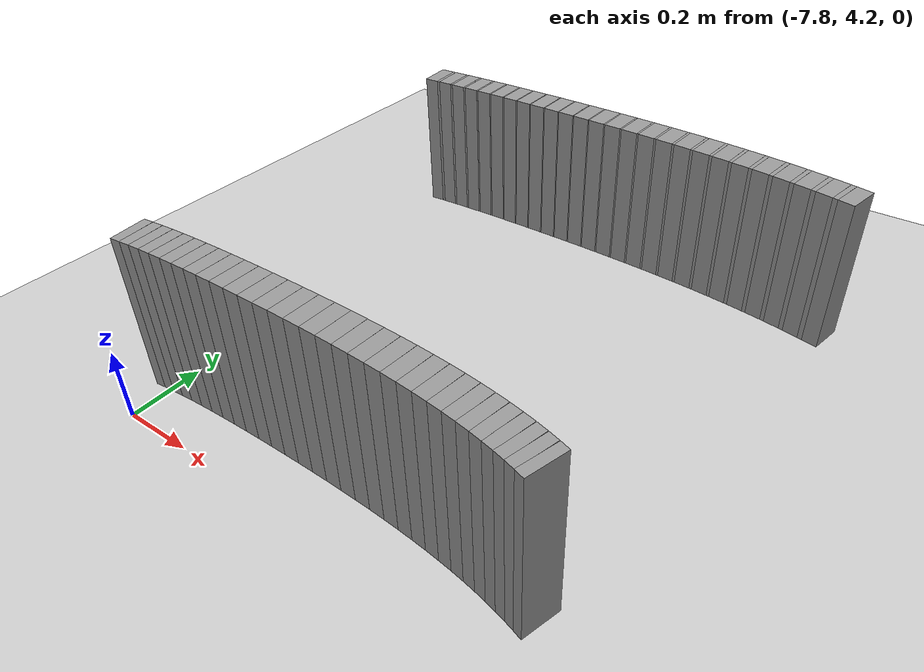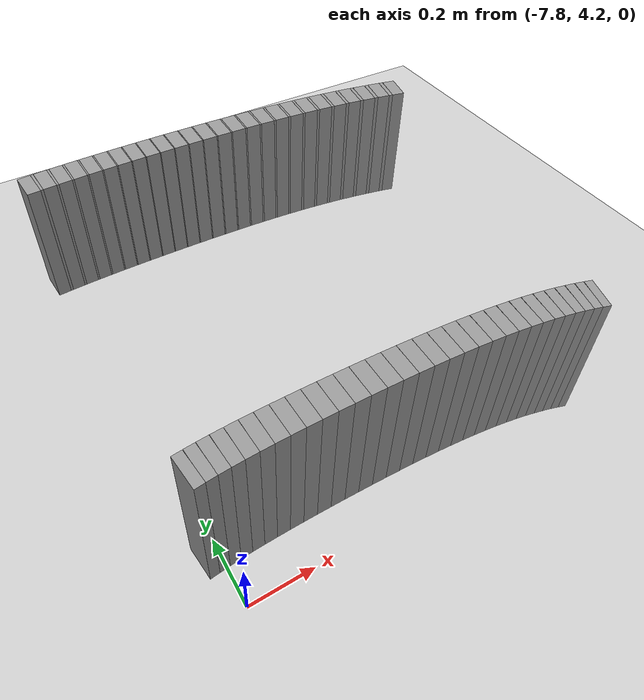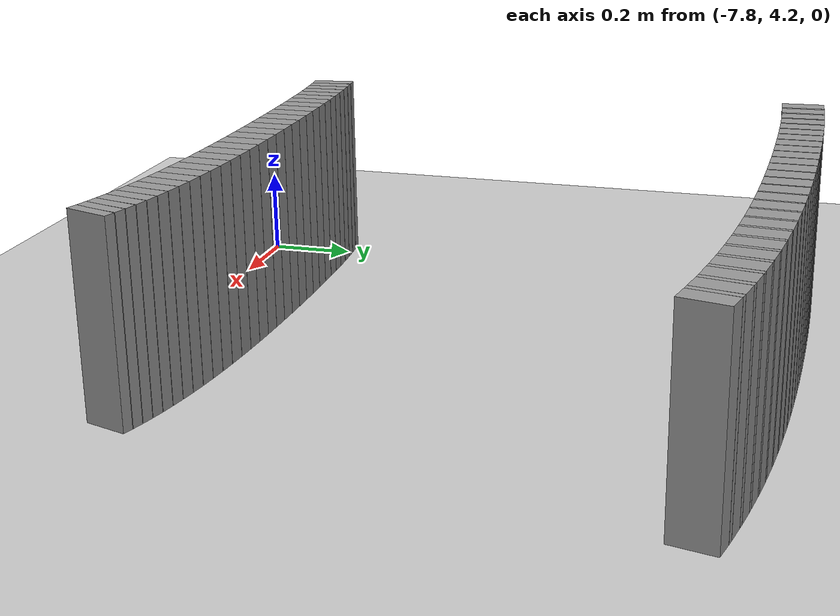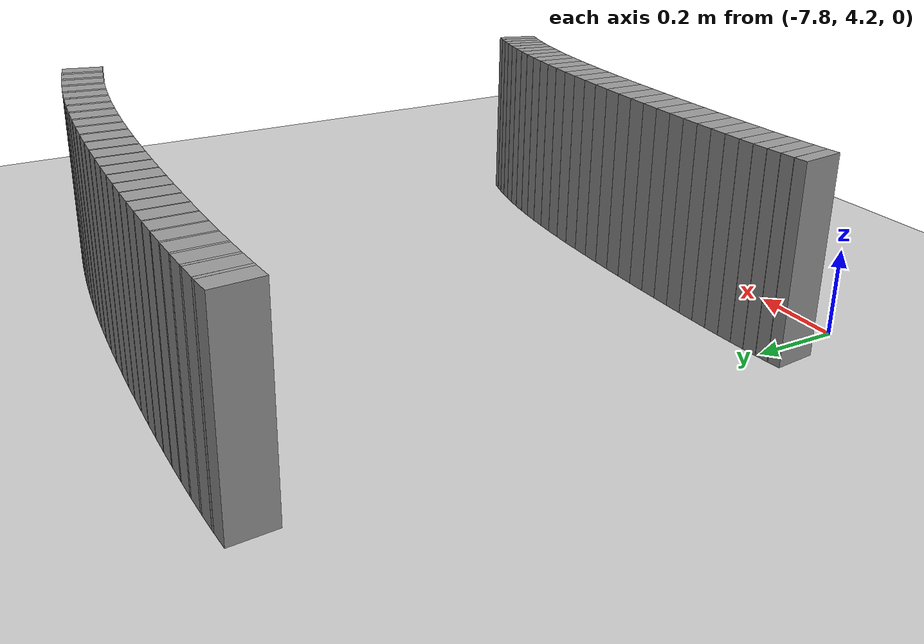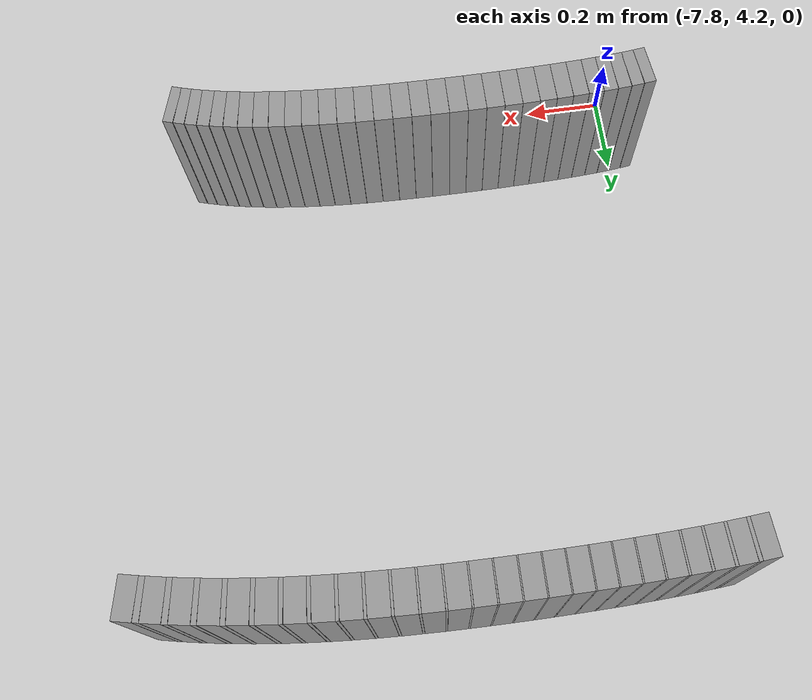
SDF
<sdf version="1.6">
 <world name="default">
  <include><uri>model://ground_plane</uri></include>
  <include><uri>model://sun</uri></include>
  <model name="wall_248_outward">
   <static>true</static>
   <link name="link">
    <collision name="collision">
     <geometry><box><size>0.025575464573912996 0.1 0.45</size></box></geometry>
    </collision>
    <visual name="visual">
     <geometry><box><size>0.025575464573912996 0.1 0.45</size></box></geometry>
     <material>
      <script><uri>file://media/materials/scripts/gazebo.material</uri><name>Gazebo/Gray</name></script>
     </material>
    </visual>
   </link>
   <pose>-6.6574316738921375 4.298431969824341 0.225 0 0 2.8372726149051863</pose>
  </model>
  <model name="wall_249_outward">
   <static>true</static>
   <link name="link">
    <collision name="collision">
     <geometry><box><size>0.027200441782967495 0.1 0.45</size></box></geometry>
    </collision>
    <visual name="visual">
     <geometry><box><size>0.027200441782967495 0.1 0.45</size></box></geometry>
     <material>
      <script><uri>file://media/materials/scripts/gazebo.material</uri><name>Gazebo/Gray</name></script>
     </material>
    </visual>
   </link>
   <pose>-6.682718054816407 4.305967324462454 0.225 0 0 2.865791725157624</pose>
  </model>
  <model name="wall_250_outward">
   <static>true</static>
   <link name="link">
    <collision name="collision">
     <geometry><box><size>0.02893953474708168 0.1 0.45</size></box></geometry>
    </collision>
    <visual name="visual">
     <geometry><box><size>0.02893953474708168 0.1 0.45</size></box></geometry>
     <material>
      <script><uri>file://media/materials/scripts/gazebo.material</uri><name>Gazebo/Gray</name></script>
     </material>
    </visual>
   </link>
   <pose>-6.7098296668051765 4.313229404364771 0.225 0 0 2.8931172204109346</pose>
  </model>
  <model name="wall_251_outward">
   <static>true</static>
   <link name="link">
    <collision name="collision">
     <geometry><box><size>0.030757272033763897 0.1 0.45</size></box></geometry>
    </collision>
    <visual name="visual">
     <geometry><box><size>0.030757272033763897 0.1 0.45</size></box></geometry>
     <material>
      <script><uri>file://media/materials/scripts/gazebo.material</uri><name>Gazebo/Gray</name></script>
     </material>
    </visual>
   </link>
   <pose>-6.7388545274230705 4.320181720258411 0.225 0 0 2.9190771000452336</pose>
  </model>
  <model name="wall_252_outward">
   <static>true</static>
   <link name="link">
    <collision name="collision">
     <geometry><box><size>0.03261140819470555 0.1 0.45</size></box></geometry>
    </collision>
    <visual name="visual">
     <geometry><box><size>0.03261140819470555 0.1 0.45</size></box></geometry>
     <material>
      <script><uri>file://media/materials/scripts/gazebo.material</uri><name>Gazebo/Gray</name></script>
     </material>
    </visual>
   </link>
   <pose>-6.769841056816526 4.326783385935764 0.225 0 0 2.9435692893764855</pose>
  </model>
  <model name="wall_253_outward">
   <static>true</static>
   <link name="link">
    <collision name="collision">
     <geometry><box><size>0.03446075659796741 0.1 0.45</size></box></geometry>
    </collision>
    <visual name="visual">
     <geometry><box><size>0.03446075659796741 0.1 0.45</size></box></geometry>
     <material>
      <script><uri>file://media/materials/scripts/gazebo.material</uri><name>Gazebo/Gray</name></script>
     </material>
    </visual>
   </link>
   <pose>-6.802795051993055 4.332992672285768 0.225 0 0 2.966504940419287</pose>
  </model>
  <model name="wall_254_outward">
   <static>true</static>
   <link name="link">
    <collision name="collision">
     <geometry><box><size>0.036273833113409155 0.1 0.45</size></box></geometry>
    </collision>
    <visual name="visual">
     <geometry><box><size>0.036273833113409155 0.1 0.45</size></box></geometry>
     <material>
      <script><uri>file://media/materials/scripts/gazebo.material</uri><name>Gazebo/Gray</name></script>
     </material>
    </visual>
   </link>
   <pose>-6.83768502200759 4.338771340091149 0.225 0 0 2.9878620114278025</pose>
  </model>
  <model name="wall_255_outward">
   <static>true</static>
   <link name="link">
    <collision name="collision">
     <geometry><box><size>0.038020001066102635 0.1 0.45</size></box></geometry>
    </collision>
    <visual name="visual">
     <geometry><box><size>0.038020001066102635 0.1 0.45</size></box></geometry>
     <material>
      <script><uri>file://media/materials/scripts/gazebo.material</uri><name>Gazebo/Gray</name></script>
     </material>
    </visual>
   </link>
   <pose>-6.874447632164488 4.344088266331967 0.225 0 0 3.0075941305650056</pose>
  </model>
  <model name="wall_256_outward">
   <static>true</static>
   <link name="link">
    <collision name="collision">
     <geometry><box><size>0.03966822927153605 0.1 0.45</size></box></geometry>
    </collision>
    <visual name="visual">
     <geometry><box><size>0.03966822927153605 0.1 0.45</size></box></geometry>
     <material>
      <script><uri>file://media/materials/scripts/gazebo.material</uri><name>Gazebo/Gray</name></script>
     </material>
    </visual>
   </link>
   <pose>-6.912988336928825 4.348921014831111 0.225 0 0 3.0257219967091595</pose>
  </model>
  <model name="wall_257_outward">
   <static>true</static>
   <link name="link">
    <collision name="collision">
     <geometry><box><size>0.041196940071160745 0.1 0.45</size></box></geometry>
    </collision>
    <visual name="visual">
     <geometry><box><size>0.041196940071160745 0.1 0.45</size></box></geometry>
     <material>
      <script><uri>file://media/materials/scripts/gazebo.material</uri><name>Gazebo/Gray</name></script>
     </material>
    </visual>
   </link>
   <pose>-6.953186357304067 4.353257085278492 0.225 0 0 3.0422463319974207</pose>
  </model>
  <model name="wall_258_outward">
   <static>true</static>
   <link name="link">
    <collision name="collision">
     <geometry><box><size>0.04257884235315781 0.1 0.45</size></box></geometry>
    </collision>
    <visual name="visual">
     <geometry><box><size>0.04257884235315781 0.1 0.45</size></box></geometry>
     <material>
      <script><uri>file://media/materials/scripts/gazebo.material</uri><name>Gazebo/Gray</name></script>
     </material>
    </visual>
   </link>
   <pose>-6.99489692700879 4.357094486815924 0.225 0 0 3.05720730566695</pose>
  </model>
  <model name="wall_259_outward">
   <static>true</static>
   <link name="link">
    <collision name="collision">
     <geometry><box><size>0.043792108509428385 0.1 0.45</size></box></geometry>
    </collision>
    <visual name="visual">
     <geometry><box><size>0.043792108509428385 0.1 0.45</size></box></geometry>
     <material>
      <script><uri>file://media/materials/scripts/gazebo.material</uri><name>Gazebo/Gray</name></script>
     </material>
    </visual>
   </link>
   <pose>-7.037951572004389 4.360440915889073 0.225 0 0 3.070650746807544</pose>
  </model>
  <model name="wall_260_outward">
   <static>true</static>
   <link name="link">
    <collision name="collision">
     <geometry><box><size>0.044833715611596776 0.1 0.45</size></box></geometry>
    </collision>
    <visual name="visual">
     <geometry><box><size>0.044833715611596776 0.1 0.45</size></box></geometry>
     <material>
      <script><uri>file://media/materials/scripts/gazebo.material</uri><name>Gazebo/Gray</name></script>
     </material>
    </visual>
   </link>
   <pose>-7.082170485514098 4.363313394539498 0.225 0 0 3.0826549471970095</pose>
  </model>
  <model name="wall_261_outward">
   <static>true</static>
   <link name="link">
    <collision name="collision">
     <geometry><box><size>0.04568570406892362 0.1 0.45</size></box></geometry>
    </collision>
    <visual name="visual">
     <geometry><box><size>0.04568570406892362 0.1 0.45</size></box></geometry>
     <material>
      <script><uri>file://media/materials/scripts/gazebo.material</uri><name>Gazebo/Gray</name></script>
     </material>
    </visual>
   </link>
   <pose>-7.1273645904783045 4.36573758143381 0.225 0 0 3.0932544063937026</pose>
  </model>
  <model name="wall_262_outward">
   <static>true</static>
   <link name="link">
    <collision name="collision">
     <geometry><box><size>0.046329223743240444 0.1 0.45</size></box></geometry>
    </collision>
    <visual name="visual">
     <geometry><box><size>0.046329223743240444 0.1 0.45</size></box></geometry>
     <material>
      <script><uri>file://media/materials/scripts/gazebo.material</uri><name>Gazebo/Gray</name></script>
     </material>
    </visual>
   </link>
   <pose>-7.173327742198119 4.367744930142952 0.225 0 0 3.1025751839136224</pose>
  </model>
  <model name="wall_263_outward">
   <static>true</static>
   <link name="link">
    <collision name="collision">
     <geometry><box><size>0.046755638895837275 0.1 0.45</size></box></geometry>
    </collision>
    <visual name="visual">
     <geometry><box><size>0.046755638895837275 0.1 0.45</size></box></geometry>
     <material>
      <script><uri>file://media/materials/scripts/gazebo.material</uri><name>Gazebo/Gray</name></script>
     </material>
    </visual>
   </link>
   <pose>-7.21984140329306 4.369370143808575 0.225 0 0 3.1107200960802346</pose>
  </model>
  <model name="wall_264_outward">
   <static>true</static>
   <link name="link">
    <collision name="collision">
     <geometry><box><size>0.046961081478466254 0.1 0.45</size></box></geometry>
    </collision>
    <visual name="visual">
     <geometry><box><size>0.046961081478466254 0.1 0.45</size></box></geometry>
     <material>
      <script><uri>file://media/materials/scripts/gazebo.material</uri><name>Gazebo/Gray</name></script>
     </material>
    </visual>
   </link>
   <pose>-7.266682014805292 4.370648814666911 0.225 0 0 3.117866424276212</pose>
  </model>
  <model name="wall_265_outward">
   <static>true</static>
   <link name="link">
    <collision name="collision">
     <geometry><box><size>0.04695121763177378 0.1 0.45</size></box></geometry>
    </collision>
    <visual name="visual">
     <geometry><box><size>0.04695121763177378 0.1 0.45</size></box></geometry>
     <material>
      <script><uri>file://media/materials/scripts/gazebo.material</uri><name>Gazebo/Gray</name></script>
     </material>
    </visual>
   </link>
   <pose>-7.313627991025942 4.371614953686322 0.225 0 0 3.124165744530242</pose>
  </model>
  <model name="wall_266_outward">
   <static>true</static>
   <link name="link">
    <collision name="collision">
     <geometry><box><size>0.04672066623198363 0.1 0.45</size></box></geometry>
    </collision>
    <visual name="visual">
     <geometry><box><size>0.04672066623198363 0.1 0.45</size></box></geometry>
     <material>
      <script><uri>file://media/materials/scripts/gazebo.material</uri><name>Gazebo/Gray</name></script>
     </material>
    </visual>
   </link>
   <pose>-7.360458752175784 4.3722988206711 0.225 0 0 3.129829690815523</pose>
  </model>
  <model name="wall_267_outward">
   <static>true</static>
   <link name="link">
    <collision name="collision">
     <geometry><box><size>0.04627843001026799 0.1 0.45</size></box></geometry>
    </collision>
    <visual name="visual">
     <geometry><box><size>0.04627843001026799 0.1 0.45</size></box></geometry>
     <material>
      <script><uri>file://media/materials/scripts/gazebo.material</uri><name>Gazebo/Gray</name></script>
     </material>
    </visual>
   </link>
   <pose>-7.406956194500241 4.37272413531648 0.225 0 0 3.135087017368507</pose>
  </model>
  <model name="wall_268_outward">
   <static>true</static>
   <link name="link">
    <collision name="collision">
     <geometry><box><size>0.04562385863985232 0.1 0.45</size></box></geometry>
    </collision>
    <visual name="visual">
     <geometry><box><size>0.04562385863985232 0.1 0.45</size></box></geometry>
     <material>
      <script><uri>file://media/materials/scripts/gazebo.material</uri><name>Gazebo/Gray</name></script>
     </material>
    </visual>
   </link>
   <pose>-7.452906826827144 4.37290659211275 0.225 0 0 3.1401932737815756</pose>
  </model>
  <model name="wall_269_outward">
   <static>true</static>
   <link name="link">
    <collision name="collision">
     <geometry><box><size>0.044764957803830496 0.1 0.45</size></box></geometry>
    </collision>
    <visual name="visual">
     <geometry><box><size>0.044764957803830496 0.1 0.45</size></box></geometry>
     <material>
      <script><uri>file://media/materials/scripts/gazebo.material</uri><name>Gazebo/Gray</name></script>
     </material>
    </visual>
   </link>
   <pose>-7.498101046176117 4.37285217235247 0.225 0 0 -3.1377350595466664</pose>
  </model>
  <model name="wall_270_outward">
   <static>true</static>
   <link name="link">
    <collision name="collision">
     <geometry><box><size>0.0437118997921333 0.1 0.45</size></box></geometry>
    </collision>
    <visual name="visual">
     <geometry><box><size>0.0437118997921333 0.1 0.45</size></box></geometry>
     <material>
      <script><uri>file://media/materials/scripts/gazebo.material</uri><name>Gazebo/Gray</name></script>
     </material>
    </visual>
   </link>
   <pose>-7.542338307994137 4.372556712230039 0.225 0 0 -3.1320245034479193</pose>
  </model>
  <model name="wall_271_outward">
   <static>true</static>
   <link name="link">
    <collision name="collision">
     <geometry><box><size>0.042477045269672546 0.1 0.45</size></box></geometry>
    </collision>
    <visual name="visual">
     <geometry><box><size>0.042477045269672546 0.1 0.45</size></box></geometry>
     <material>
      <script><uri>file://media/materials/scripts/gazebo.material</uri><name>Gazebo/Gray</name></script>
     </material>
    </visual>
   </link>
   <pose>-7.585429038459657 4.372006348894338 0.225 0 0 -3.1255246715312097</pose>
  </model>
  <model name="wall_272_outward">
   <static>true</static>
   <link name="link">
    <collision name="collision">
     <geometry><box><size>0.04106352529444105 0.1 0.45</size></box></geometry>
    </collision>
    <visual name="visual">
     <geometry><box><size>0.04106352529444105 0.1 0.45</size></box></geometry>
     <material>
      <script><uri>file://media/materials/scripts/gazebo.material</uri><name>Gazebo/Gray</name></script>
     </material>
    </visual>
   </link>
   <pose>-7.627190827679546 4.371179032941434 0.225 0 0 -3.117916369177105</pose>
  </model>
  <model name="wall_273_outward">
   <static>true</static>
   <link name="link">
    <collision name="collision">
     <geometry><box><size>0.039485959833912704 0.1 0.45</size></box></geometry>
    </collision>
    <visual name="visual">
     <geometry><box><size>0.039485959833912704 0.1 0.45</size></box></geometry>
     <material>
      <script><uri>file://media/materials/scripts/gazebo.material</uri><name>Gazebo/Gray</name></script>
     </material>
    </visual>
   </link>
   <pose>-7.667449219566716 4.370046208828569 0.225 0 0 -3.1088281261409545</pose>
  </model>
  <model name="wall_274_outward">
   <static>true</static>
   <link name="link">
    <collision name="collision">
     <geometry><box><size>0.037769325015173924 0.1 0.45</size></box></geometry>
    </collision>
    <visual name="visual">
     <geometry><box><size>0.037769325015173924 0.1 0.45</size></box></geometry>
     <material>
      <script><uri>file://media/materials/scripts/gazebo.material</uri><name>Gazebo/Gray</name></script>
     </material>
    </visual>
   </link>
   <pose>-7.706048290721533 4.368575694421013 0.225 0 0 -3.0979581861425927</pose>
  </model>
  <model name="wall_275_outward">
   <static>true</static>
   <link name="link">
    <collision name="collision">
     <geometry><box><size>0.03591988414323616 0.1 0.45</size></box></geometry>
    </collision>
    <visual name="visual">
     <geometry><box><size>0.03591988414323616 0.1 0.45</size></box></geometry>
     <material>
      <script><uri>file://media/materials/scripts/gazebo.material</uri><name>Gazebo/Gray</name></script>
     </material>
    </visual>
   </link>
   <pose>-7.742846173380132 4.366736178548417 0.225 0 0 -3.0850057543861267</pose>
  </model>
  <model name="wall_276_outward">
   <static>true</static>
   <link name="link">
    <collision name="collision">
     <geometry><box><size>0.03395863335548198 0.1 0.45</size></box></geometry>
    </collision>
    <visual name="visual">
     <geometry><box><size>0.03395863335548198 0.1 0.45</size></box></geometry>
     <material>
      <script><uri>file://media/materials/scripts/gazebo.material</uri><name>Gazebo/Gray</name></script>
     </material>
    </visual>
   </link>
   <pose>-7.777712813559217 4.364500629307854 0.225 0 0 -3.0696907160808786</pose>
  </model>
  <model name="wall_277_outward">
   <static>true</static>
   <link name="link">
    <collision name="collision">
     <geometry><box><size>0.0319092714971115 0.1 0.45</size></box></geometry>
    </collision>
    <visual name="visual">
     <geometry><box><size>0.0319092714971115 0.1 0.45</size></box></geometry>
     <material>
      <script><uri>file://media/materials/scripts/gazebo.material</uri><name>Gazebo/Gray</name></script>
     </material>
    </visual>
   </link>
   <pose>-7.8105386154887055 4.361850115675594 0.225 0 0 -3.051797810157615</pose>
  </model>
  <model name="wall_278_outward">
   <static>true</static>
   <link name="link">
    <collision name="collision">
     <geometry><box><size>0.02978852907406418 0.1 0.45</size></box></geometry>
    </collision>
    <visual name="visual">
     <geometry><box><size>0.02978852907406418 0.1 0.45</size></box></geometry>
     <material>
      <script><uri>file://media/materials/scripts/gazebo.material</uri><name>Gazebo/Gray</name></script>
     </material>
    </visual>
   </link>
   <pose>-7.841232495446281 4.358777804784521 0.225 0 0 -3.031151937845873</pose>
  </model>
  <model name="wall_219_inward">
   <static>true</static>
   <link name="link">
    <collision name="collision">
     <geometry><box><size>0.04589369744555563 0.1 0.45</size></box></geometry>
    </collision>
    <visual name="visual">
     <geometry><box><size>0.04589369744555563 0.1 0.45</size></box></geometry>
     <material>
      <script><uri>file://media/materials/scripts/gazebo.material</uri><name>Gazebo/Gray</name></script>
     </material>
    </visual>
   </link>
   <pose>-6.473819144742575 5.490547600831839 0.225 0 0 2.919077100045219</pose>
  </model>
  <model name="wall_220_inward">
   <static>true</static>
   <link name="link">
    <collision name="collision">
     <geometry><box><size>0.01469494629990537 0.1 0.45</size></box></geometry>
    </collision>
    <visual name="visual">
     <geometry><box><size>0.01469494629990537 0.1 0.45</size></box></geometry>
     <material>
      <script><uri>file://media/materials/scripts/gazebo.material</uri><name>Gazebo/Gray</name></script>
     </material>
    </visual>
   </link>
   <pose>-6.503385890855298 5.49714518961403 0.225 0 0 2.9313231947108775</pose>
  </model>
  <model name="wall_221_inward">
   <static>true</static>
   <link name="link">
    <collision name="collision">
     <geometry><box><size>0.04684042927554593 0.1 0.45</size></box></geometry>
    </collision>
    <visual name="visual">
     <geometry><box><size>0.04684042927554593 0.1 0.45</size></box></geometry>
     <material>
      <script><uri>file://media/materials/scripts/gazebo.material</uri><name>Gazebo/Gray</name></script>
     </material>
    </visual>
   </link>
   <pose>-6.533534055574381 5.50328627827923 0.225 0 0 2.9435692893764878</pose>
  </model>
  <model name="wall_222_inward">
   <static>true</static>
   <link name="link">
    <collision name="collision">
     <geometry><box><size>0.013761088998576431 0.1 0.45</size></box></geometry>
    </collision>
    <visual name="visual">
     <geometry><box><size>0.013761088998576431 0.1 0.45</size></box></geometry>
     <material>
      <script><uri>file://media/materials/scripts/gazebo.material</uri><name>Gazebo/Gray</name></script>
     </material>
    </visual>
   </link>
   <pose>-6.563257737045922 5.5091699482311505 0.225 0 0 2.9550371148978933</pose>
  </model>
  <model name="wall_223_inward">
   <static>true</static>
   <link name="link">
    <collision name="collision">
     <geometry><box><size>0.047749118406490515 0.1 0.45</size></box></geometry>
    </collision>
    <visual name="visual">
     <geometry><box><size>0.047749118406490515 0.1 0.45</size></box></geometry>
     <material>
      <script><uri>file://media/materials/scripts/gazebo.material</uri><name>Gazebo/Gray</name></script>
     </material>
    </visual>
   </link>
   <pose>-6.593528444065114 5.514604936477443 0.225 0 0 2.966504940419296</pose>
  </model>
  <model name="wall_224_inward">
   <static>true</static>
   <link name="link">
    <collision name="collision">
     <geometry><box><size>0.012813999069418488 0.1 0.45</size></box></geometry>
    </collision>
    <visual name="visual">
     <geometry><box><size>0.012813999069418488 0.1 0.45</size></box></geometry>
     <material>
      <script><uri>file://media/materials/scripts/gazebo.material</uri><name>Gazebo/Gray</name></script>
     </material>
    </visual>
   </link>
   <pose>-6.623358594025754 5.519812384067412 0.225 0 0 2.977183475923572</pose>
  </model>
  <model name="wall_225_inward">
   <static>true</static>
   <link name="link">
    <collision name="collision">
     <geometry><box><size>0.04860102578353315 0.1 0.45</size></box></geometry>
    </collision>
    <visual name="visual">
     <geometry><box><size>0.04860102578353315 0.1 0.45</size></box></geometry>
     <material>
      <script><uri>file://media/materials/scripts/gazebo.material</uri><name>Gazebo/Gray</name></script>
     </material>
    </visual>
   </link>
   <pose>-6.65369312623951 5.524582050834966 0.225 0 0 2.987862011427801</pose>
  </model>
  <model name="wall_226_inward">
   <static>true</static>
   <link name="link">
    <collision name="collision">
     <geometry><box><size>0.011839079412514346 0.1 0.45</size></box></geometry>
    </collision>
    <visual name="visual">
     <geometry><box><size>0.011839079412514346 0.1 0.45</size></box></geometry>
     <material>
      <script><uri>file://media/materials/scripts/gazebo.material</uri><name>Gazebo/Gray</name></script>
     </material>
    </visual>
   </link>
   <pose>-6.68356544273075 5.529151764673193 0.225 0 0 2.9977280709963856</pose>
  </model>
  <model name="wall_227_inward">
   <static>true</static>
   <link name="link">
    <collision name="collision">
     <geometry><box><size>0.049378337662877005 0.1 0.45</size></box></geometry>
    </collision>
    <visual name="visual">
     <geometry><box><size>0.049378337662877005 0.1 0.45</size></box></geometry>
     <material>
      <script><uri>file://media/materials/scripts/gazebo.material</uri><name>Gazebo/Gray</name></script>
     </material>
    </visual>
   </link>
   <pose>-6.713891675432594 5.53329886276765 0.225 0 0 3.0075941305649905</pose>
  </model>
  <model name="wall_228_inward">
   <static>true</static>
   <link name="link">
    <collision name="collision">
     <geometry><box><size>0.010876570757852035 0.1 0.45</size></box></geometry>
    </collision>
    <visual name="visual">
     <geometry><box><size>0.010876570757852035 0.1 0.45</size></box></geometry>
     <material>
      <script><uri>file://media/materials/scripts/gazebo.material</uri><name>Gazebo/Gray</name></script>
     </material>
    </visual>
   </link>
   <pose>-6.74375541966007 5.537274947188313 0.225 0 0 3.016658063637101</pose>
  </model>
  <model name="wall_229_inward">
   <static>true</static>
   <link name="link">
    <collision name="collision">
     <geometry><box><size>0.05006415143930086 0.1 0.45</size></box></geometry>
    </collision>
    <visual name="visual">
     <geometry><box><size>0.05006415143930086 0.1 0.45</size></box></geometry>
     <material>
      <script><uri>file://media/materials/scripts/gazebo.material</uri><name>Gazebo/Gray</name></script>
     </material>
    </visual>
   </link>
   <pose>-6.7740155412707095 5.540846608117101 0.225 0 0 3.0257219967091777</pose>
  </model>
  <model name="wall_230_inward">
   <static>true</static>
   <link name="link">
    <collision name="collision">
     <geometry><box><size>0.00991448837257331 0.1 0.45</size></box></geometry>
    </collision>
    <visual name="visual">
     <geometry><box><size>0.00991448837257331 0.1 0.45</size></box></geometry>
     <material>
      <script><uri>file://media/materials/scripts/gazebo.material</uri><name>Gazebo/Gray</name></script>
     </material>
    </visual>
   </link>
   <pose>-6.803808334928508 5.544273017858796 0.225 0 0 3.033984164353252</pose>
  </model>
  <model name="wall_231_inward">
   <static>true</static>
   <link name="link">
    <collision name="collision">
     <geometry><box><size>0.0506427292822846 0.1 0.45</size></box></geometry>
    </collision>
    <visual name="visual">
     <geometry><box><size>0.0506427292822846 0.1 0.45</size></box></geometry>
     <material>
      <script><uri>file://media/materials/scripts/gazebo.material</uri><name>Gazebo/Gray</name></script>
     </material>
    </visual>
   </link>
   <pose>-6.833933415731087 5.547316878976133 0.225 0 0 3.042246331997415</pose>
  </model>
  <model name="wall_232_inward">
   <static>true</static>
   <link name="link">
    <collision name="collision">
     <geometry><box><size>0.008976500483810707 0.1 0.45</size></box></geometry>
    </collision>
    <visual name="visual">
     <geometry><box><size>0.008976500483810707 0.1 0.45</size></box></geometry>
     <material>
      <script><uri>file://media/materials/scripts/gazebo.material</uri><name>Gazebo/Gray</name></script>
     </material>
    </visual>
   </link>
   <pose>-6.863599250723681 5.550240064598691 0.225 0 0 3.049726818832233</pose>
  </model>
  <model name="wall_233_inward">
   <static>true</static>
   <link name="link">
    <collision name="collision">
     <geometry><box><size>0.05110031125687345 0.1 0.45</size></box></geometry>
    </collision>
    <visual name="visual">
     <geometry><box><size>0.05110031125687345 0.1 0.45</size></box></geometry>
     <material>
      <script><uri>file://media/materials/scripts/gazebo.material</uri><name>Gazebo/Gray</name></script>
     </material>
    </visual>
   </link>
   <pose>-6.893527815078116 5.552805302593291 0.225 0 0 3.0572073056669473</pose>
  </model>
  <model name="wall_234_inward">
   <static>true</static>
   <link name="link">
    <collision name="collision">
     <geometry><box><size>0.008066003944976806 0.1 0.45</size></box></geometry>
    </collision>
    <visual name="visual">
     <geometry><box><size>0.008066003944976806 0.1 0.45</size></box></geometry>
     <material>
      <script><uri>file://media/materials/scripts/gazebo.material</uri><name>Gazebo/Gray</name></script>
     </material>
    </visual>
   </link>
   <pose>-6.923007900069823 5.55527170622263 0.225 0 0 3.06392902623723</pose>
  </model>
  <model name="wall_235_inward">
   <static>true</static>
   <link name="link">
    <collision name="collision">
     <geometry><box><size>0.051426504955073574 0.1 0.45</size></box></geometry>
    </collision>
    <visual name="visual">
     <geometry><box><size>0.051426504955073574 0.1 0.45</size></box></geometry>
     <material>
      <script><uri>file://media/materials/scripts/gazebo.material</uri><name>Gazebo/Gray</name></script>
     </material>
    </visual>
   </link>
   <pose>-6.952677320719328 5.5574072264752825 0.225 0 0 3.070650746807547</pose>
  </model>
  <model name="wall_236_inward">
   <static>true</static>
   <link name="link">
    <collision name="collision">
     <geometry><box><size>0.0072024769883759976 0.1 0.45</size></box></geometry>
    </collision>
    <visual name="visual">
     <geometry><box><size>0.0072024769883759976 0.1 0.45</size></box></geometry>
     <material>
      <script><uri>file://media/materials/scripts/gazebo.material</uri><name>Gazebo/Gray</name></script>
     </material>
    </visual>
   </link>
   <pose>-6.981919543719801 5.559463543331659 0.225 0 0 3.0766528470022556</pose>
  </model>
  <model name="wall_237_inward">
   <static>true</static>
   <link name="link">
    <collision name="collision">
     <geometry><box><size>0.05161488650459096 0.1 0.45</size></box></geometry>
    </collision>
    <visual name="visual">
     <geometry><box><size>0.05161488650459096 0.1 0.45</size></box></geometry>
     <material>
      <script><uri>file://media/materials/scripts/gazebo.material</uri><name>Gazebo/Gray</name></script>
     </material>
    </visual>
   </link>
   <pose>-7.011275824520887 5.561217393800164 0.225 0 0 3.0826549471970113</pose>
  </model>
  <model name="wall_238_inward">
   <static>true</static>
   <link name="link">
    <collision name="collision">
     <geometry><box><size>0.00635964574720719 0.1 0.45</size></box></geometry>
    </collision>
    <visual name="visual">
     <geometry><box><size>0.00635964574720719 0.1 0.45</size></box></geometry>
     <material>
      <script><uri>file://media/materials/scripts/gazebo.material</uri><name>Gazebo/Gray</name></script>
     </material>
    </visual>
   </link>
   <pose>-7.040213707435509 5.562908022370083 0.225 0 0 3.0879546767953774</pose>
  </model>
  <model name="wall_239_inward">
   <static>true</static>
   <link name="link">
    <collision name="collision">
     <geometry><box><size>0.05166182509925116 0.1 0.45</size></box></geometry>
    </collision>
    <visual name="visual">
     <geometry><box><size>0.05166182509925116 0.1 0.45</size></box></geometry>
     <material>
      <script><uri>file://media/materials/scripts/gazebo.material</uri><name>Gazebo/Gray</name></script>
     </material>
    </visual>
   </link>
   <pose>-7.069189697527887 5.56432663470442 0.225 0 0 3.093254406393692</pose>
  </model>
  <model name="wall_240_inward">
   <static>true</static>
   <link name="link">
    <collision name="collision">
     <geometry><box><size>0.005592446267981036 0.1 0.45</size></box></geometry>
    </collision>
    <visual name="visual">
     <geometry><box><size>0.005592446267981036 0.1 0.45</size></box></geometry>
     <material>
      <script><uri>file://media/materials/scripts/gazebo.material</uri><name>Gazebo/Gray</name></script>
     </material>
    </visual>
   </link>
   <pose>-7.097783994180271 5.565696863754162 0.225 0 0 3.0979147951537143</pose>
  </model>
  <model name="wall_241_inward">
   <static>true</static>
   <link name="link">
    <collision name="collision">
     <geometry><box><size>0.05156896440183613 0.1 0.45</size></box></geometry>
    </collision>
    <visual name="visual">
     <geometry><box><size>0.05156896440183613 0.1 0.45</size></box></geometry>
     <material>
      <script><uri>file://media/materials/scripts/gazebo.material</uri><name>Gazebo/Gray</name></script>
     </material>
    </visual>
   </link>
   <pose>-7.126342408504135 5.566824747973561 0.225 0 0 3.1025751839136313</pose>
  </model>
  <model name="wall_242_inward">
   <static>true</static>
   <link name="link">
    <collision name="collision">
     <geometry><box><size>0.004886933791717926 0.1 0.45</size></box></geometry>
    </collision>
    <visual name="visual">
     <geometry><box><size>0.004886933791717926 0.1 0.45</size></box></geometry>
     <material>
      <script><uri>file://media/materials/scripts/gazebo.material</uri><name>Gazebo/Gray</name></script>
     </material>
    </visual>
   </link>
   <pose>-7.154549241647791 5.567915907590887 0.225 0 0 3.1066476399968046</pose>
  </model>
  <model name="wall_243_inward">
   <static>true</static>
   <link name="link">
    <collision name="collision">
     <geometry><box><size>0.05134303363697341 0.1 0.45</size></box></geometry>
    </collision>
    <visual name="visual">
     <geometry><box><size>0.05134303363697341 0.1 0.45</size></box></geometry>
     <material>
      <script><uri>file://media/materials/scripts/gazebo.material</uri><name>Gazebo/Gray</name></script>
     </material>
    </visual>
   </link>
   <pose>-7.182650500609562 5.568793696684942 0.225 0 0 3.1107200960802324</pose>
  </model>
  <model name="wall_244_inward">
   <static>true</static>
   <link name="link">
    <collision name="collision">
     <geometry><box><size>0.004287787793521997 0.1 0.45</size></box></geometry>
    </collision>
    <visual name="visual">
     <geometry><box><size>0.004287787793521997 0.1 0.45</size></box></geometry>
     <material>
      <script><uri>file://media/materials/scripts/gazebo.material</uri><name>Gazebo/Gray</name></script>
     </material>
    </visual>
   </link>
   <pose>-7.210452879518847 5.569644635906071 0.225 0 0 3.1142932601782753</pose>
  </model>
  <model name="wall_245_inward">
   <static>true</static>
   <link name="link">
    <collision name="collision">
     <geometry><box><size>0.050994791386766124 0.1 0.45</size></box></geometry>
    </collision>
    <visual name="visual">
     <geometry><box><size>0.050994791386766124 0.1 0.45</size></box></geometry>
     <material>
      <script><uri>file://media/materials/scripts/gazebo.material</uri><name>Gazebo/Gray</name></script>
     </material>
    </visual>
   </link>
   <pose>-7.238086193944493 5.570308055939893 0.225 0 0 3.1178664242762197</pose>
  </model>
  <model name="wall_246_inward">
   <static>true</static>
   <link name="link">
    <collision name="collision">
     <geometry><box><size>0.0037795859032632483 0.1 0.45</size></box></geometry>
    </collision>
    <visual name="visual">
     <geometry><box><size>0.0037795859032632483 0.1 0.45</size></box></geometry>
     <material>
      <script><uri>file://media/materials/scripts/gazebo.material</uri><name>Gazebo/Gray</name></script>
     </material>
    </visual>
   </link>
   <pose>-7.265465806200721 5.570951838951622 0.225 0 0 3.1210160844032804</pose>
  </model>
  <model name="wall_247_inward">
   <static>true</static>
   <link name="link">
    <collision name="collision">
     <geometry><box><size>0.05054020838533734 0.1 0.45</size></box></geometry>
    </collision>
    <visual name="visual">
     <geometry><box><size>0.05054020838533734 0.1 0.45</size></box></geometry>
     <material>
      <script><uri>file://media/materials/scripts/gazebo.material</uri><name>Gazebo/Gray</name></script>
     </material>
    </visual>
   </link>
   <pose>-7.292621466162187 5.571431079180792 0.225 0 0 3.1241657445302393</pose>
  </model>
  <model name="wall_248_inward">
   <static>true</static>
   <link name="link">
    <collision name="collision">
     <geometry><box><size>0.003398363228641351 0.1 0.45</size></box></geometry>
    </collision>
    <visual name="visual">
     <geometry><box><size>0.003398363228641351 0.1 0.45</size></box></geometry>
     <material>
      <script><uri>file://media/materials/scripts/gazebo.material</uri><name>Gazebo/Gray</name></script>
     </material>
    </visual>
   </link>
   <pose>-7.319586733866902 5.571896235264823 0.225 0 0 3.126997717672831</pose>
  </model>
  <model name="wall_249_inward">
   <static>true</static>
   <link name="link">
    <collision name="collision">
     <geometry><box><size>0.049997056258788336 0.1 0.45</size></box></geometry>
    </collision>
    <visual name="visual">
     <geometry><box><size>0.049997056258788336 0.1 0.45</size></box></geometry>
     <material>
      <script><uri>file://media/materials/scripts/gazebo.material</uri><name>Gazebo/Gray</name></script>
     </material>
    </visual>
   </link>
   <pose>-7.346282533171267 5.5722150838057125 0.225 0 0 3.129829690815514</pose>
  </model>
  <model name="wall_250_inward">
   <static>true</static>
   <link name="link">
    <collision name="collision">
     <geometry><box><size>0.0031543922990497904 0.1 0.45</size></box></geometry>
    </collision>
    <visual name="visual">
     <geometry><box><size>0.0031543922990497904 0.1 0.45</size></box></geometry>
     <material>
      <script><uri>file://media/materials/scripts/gazebo.material</uri><name>Gazebo/Gray</name></script>
     </material>
    </visual>
   </link>
   <pose>-7.372856462184232 5.572523540161912 0.225 0 0 3.132458354091912</pose>
  </model>
  <model name="wall_251_inward">
   <static>true</static>
   <link name="link">
    <collision name="collision">
     <geometry><box><size>0.04938751186119153 0.1 0.45</size></box></geometry>
    </collision>
    <visual name="visual">
     <geometry><box><size>0.04938751186119153 0.1 0.45</size></box></geometry>
     <material>
      <script><uri>file://media/materials/scripts/gazebo.material</uri><name>Gazebo/Gray</name></script>
     </material>
    </visual>
   </link>
   <pose>-7.399126825908983 5.5726985940034 0.225 0 0 3.1350870173685026</pose>
  </model>
  <model name="wall_252_inward">
   <static>true</static>
   <link name="link">
    <collision name="collision">
     <geometry><box><size>0.0030637505193493804 0.1 0.45</size></box></geometry>
    </collision>
    <visual name="visual">
     <geometry><box><size>0.0030637505193493804 0.1 0.45</size></box></geometry>
     <material>
      <script><uri>file://media/materials/scripts/gazebo.material</uri><name>Gazebo/Gray</name></script>
     </material>
    </visual>
   </link>
   <pose>-7.425351922574737 5.572865296196705 0.225 0 0 3.137640145575196</pose>
  </model>
  <model name="wall_253_inward">
   <static>true</static>
   <link name="link">
    <collision name="collision">
     <geometry><box><size>0.04873283467988589 0.1 0.45</size></box></geometry>
    </collision>
    <visual name="visual">
     <geometry><box><size>0.04873283467988589 0.1 0.45</size></box></geometry>
     <material>
      <script><uri>file://media/materials/scripts/gazebo.material</uri><name>Gazebo/Gray</name></script>
     </material>
    </visual>
   </link>
   <pose>-7.451250179350714 5.572905448791476 0.225 0 0 3.1401932737815743</pose>
  </model>
  <model name="wall_254_inward">
   <static>true</static>
   <link name="link">
    <collision name="collision">
     <geometry><box><size>0.0031541806788033693 0.1 0.45</size></box></geometry>
    </collision>
    <visual name="visual">
     <geometry><box><size>0.0031541806788033693 0.1 0.45</size></box></geometry>
     <material>
      <script><uri>file://media/materials/scripts/gazebo.material</uri><name>Gazebo/Gray</name></script>
     </material>
    </visual>
   </link>
   <pose>-7.477193661980867 5.572937608240299 0.225 0 0 -3.140363546472471</pose>
  </model>
  <model name="wall_255_inward">
   <static>true</static>
   <link name="link">
    <collision name="collision">
     <geometry><box><size>0.048055225076358316 0.1 0.45</size></box></geometry>
    </collision>
    <visual name="visual">
     <geometry><box><size>0.048055225076358316 0.1 0.45</size></box></geometry>
     <material>
      <script><uri>file://media/materials/scripts/gazebo.material</uri><name>Gazebo/Gray</name></script>
     </material>
    </visual>
   </link>
   <pose>-7.502798184889578 5.572842981282712 0.225 0 0 -3.1377350595466527</pose>
  </model>
  <model name="wall_256_inward">
   <static>true</static>
   <link name="link">
    <collision name="collision">
     <geometry><box><size>0.003426329003643491 0.1 0.45</size></box></geometry>
    </collision>
    <visual name="visual">
     <geometry><box><size>0.003426329003643491 0.1 0.45</size></box></geometry>
     <material>
      <script><uri>file://media/materials/scripts/gazebo.material</uri><name>Gazebo/Gray</name></script>
     </material>
    </visual>
   </link>
   <pose>-7.528538744552245 5.572738792569796 0.225 0 0 -3.134879781497207</pose>
  </model>
  <model name="wall_257_inward">
   <static>true</static>
   <link name="link">
    <collision name="collision">
     <geometry><box><size>0.04737502771763209 0.1 0.45</size></box></geometry>
    </collision>
    <visual name="visual">
     <geometry><box><size>0.04737502771763209 0.1 0.45</size></box></geometry>
     <material>
      <script><uri>file://media/materials/scripts/gazebo.material</uri><name>Gazebo/Gray</name></script>
     </material>
    </visual>
   </link>
   <pose>-7.553938300031441 5.572500650171104 0.225 0 0 -3.132024503447925</pose>
  </model>
  <model name="wall_258_inward">
   <static>true</static>
   <link name="link">
    <collision name="collision">
     <geometry><box><size>0.003899892284945918 0.1 0.45</size></box></geometry>
    </collision>
    <visual name="visual">
     <geometry><box><size>0.003899892284945918 0.1 0.45</size></box></geometry>
     <material>
      <script><uri>file://media/materials/scripts/gazebo.material</uri><name>Gazebo/Gray</name></script>
     </material>
    </visual>
   </link>
   <pose>-7.579574515562381 5.572249014086111 0.225 0 0 -3.128774587489708</pose>
  </model>
  <model name="wall_259_inward">
   <static>true</static>
   <link name="link">
    <collision name="collision">
     <geometry><box><size>0.04670950342645067 0.1 0.45</size></box></geometry>
    </collision>
    <visual name="visual">
     <geometry><box><size>0.04670950342645067 0.1 0.45</size></box></geometry>
     <material>
      <script><uri>file://media/materials/scripts/gazebo.material</uri><name>Gazebo/Gray</name></script>
     </material>
    </visual>
   </link>
   <pose>-7.604876038428861 5.571848772647886 0.225 0 0 -3.1255246715311813</pose>
  </model>
  <model name="wall_260_inward">
   <static>true</static>
   <link name="link">
    <collision name="collision">
     <geometry><box><size>0.004564970402066516 0.1 0.45</size></box></geometry>
    </collision>
    <visual name="visual">
     <geometry><box><size>0.004564970402066516 0.1 0.45</size></box></geometry>
     <material>
      <script><uri>file://media/materials/scripts/gazebo.material</uri><name>Gazebo/Gray</name></script>
     </material>
    </visual>
   </link>
   <pose>-7.630509809878742 5.571428170199001 0.225 0 0 -3.1217205203541907</pose>
  </model>
  <model name="wall_261_inward">
   <static>true</static>
   <link name="link">
    <collision name="collision">
     <geometry><box><size>0.04607251868849772 0.1 0.45</size></box></geometry>
    </collision>
    <visual name="visual">
     <geometry><box><size>0.04607251868849772 0.1 0.45</size></box></geometry>
     <material>
      <script><uri>file://media/materials/scripts/gazebo.material</uri><name>Gazebo/Gray</name></script>
     </material>
    </visual>
   </link>
   <pose>-7.65582164738486 5.570837453261474 0.225 0 0 -3.1179163691770935</pose>
  </model>
  <model name="wall_262_inward">
   <static>true</static>
   <link name="link">
    <collision name="collision">
     <geometry><box><size>0.005452927055347617 0.1 0.45</size></box></geometry>
    </collision>
    <visual name="visual">
     <geometry><box><size>0.005452927055347617 0.1 0.45</size></box></geometry>
     <material>
      <script><uri>file://media/materials/scripts/gazebo.material</uri><name>Gazebo/Gray</name></script>
     </material>
    </visual>
   </link>
   <pose>-7.681576828287524 5.570215159493444 0.225 0 0 -3.113372247659083</pose>
  </model>
  <model name="wall_263_inward">
   <static>true</static>
   <link name="link">
    <collision name="collision">
     <geometry><box><size>0.045473465619735004 0.1 0.45</size></box></geometry>
    </collision>
    <visual name="visual">
     <geometry><box><size>0.045473465619735004 0.1 0.45</size></box></geometry>
     <material>
      <script><uri>file://media/materials/scripts/gazebo.material</uri><name>Gazebo/Gray</name></script>
     </material>
    </visual>
   </link>
   <pose>-7.707026736019481 5.569393402772004 0.225 0 0 -3.1088281261409647</pose>
  </model>
  <model name="wall_264_inward">
   <static>true</static>
   <link name="link">
    <collision name="collision">
     <geometry><box><size>0.006521931890473292 0.1 0.45</size></box></geometry>
    </collision>
    <visual name="visual">
     <geometry><box><size>0.006521931890473292 0.1 0.45</size></box></geometry>
     <material>
      <script><uri>file://media/materials/scripts/gazebo.material</uri><name>Gazebo/Gray</name></script>
     </material>
    </visual>
   </link>
   <pose>-7.7330098528488085 5.568524040778109 0.225 0 0 -3.103393156141788</pose>
  </model>
  <model name="wall_265_inward">
   <static>true</static>
   <link name="link">
    <collision name="collision">
     <geometry><box><size>0.04491612297572997 0.1 0.45</size></box></geometry>
    </collision>
    <visual name="visual">
     <geometry><box><size>0.04491612297572997 0.1 0.45</size></box></geometry>
     <material>
      <script><uri>file://media/materials/scripts/gazebo.material</uri><name>Gazebo/Gray</name></script>
     </material>
    </visual>
   </link>
   <pose>-7.758705125058643 5.5674198691918235 0.225 0 0 -3.0979581861425785</pose>
  </model>
  <model name="wall_266_inward">
   <static>true</static>
   <link name="link">
    <collision name="collision">
     <geometry><box><size>0.007771404729691425 0.1 0.45</size></box></geometry>
    </collision>
    <visual name="visual">
     <geometry><box><size>0.007771404729691425 0.1 0.45</size></box></geometry>
     <material>
      <script><uri>file://media/materials/scripts/gazebo.material</uri><name>Gazebo/Gray</name></script>
     </material>
    </visual>
   </link>
   <pose>-7.785022634967087 5.566245600853254 0.225 0 0 -3.0914819702642746</pose>
  </model>
  <model name="wall_267_inward">
   <static>true</static>
   <link name="link">
    <collision name="collision">
     <geometry><box><size>0.0444002692927834 0.1 0.45</size></box></geometry>
    </collision>
    <visual name="visual">
     <geometry><box><size>0.0444002692927834 0.1 0.45</size></box></geometry>
     <material>
      <script><uri>file://media/materials/scripts/gazebo.material</uri><name>Gazebo/Gray</name></script>
     </material>
    </visual>
   </link>
   <pose>-7.811068060554529 5.564795400672226 0.225 0 0 -3.0850057543861746</pose>
  </model>
  <model name="wall_268_inward">
   <static>true</static>
   <link name="link">
    <collision name="collision">
     <geometry><box><size>0.009188933179720993 0.1 0.45</size></box></geometry>
    </collision>
    <visual name="visual">
     <geometry><box><size>0.009188933179720993 0.1 0.45</size></box></geometry>
     <material>
      <script><uri>file://media/materials/scripts/gazebo.material</uri><name>Gazebo/Gray</name></script>
     </material>
    </visual>
   </link>
   <pose>-7.837817649787702 5.563244868379535 0.225 0 0 -3.077348235233484</pose>
  </model>
  <model name="wall_269_inward">
   <static>true</static>
   <link name="link">
    <collision name="collision">
     <geometry><box><size>0.04392124964753321 0.1 0.45</size></box></geometry>
    </collision>
    <visual name="visual">
     <geometry><box><size>0.04392124964753321 0.1 0.45</size></box></geometry>
     <material>
      <script><uri>file://media/materials/scripts/gazebo.material</uri><name>Gazebo/Gray</name></script>
     </material>
    </visual>
   </link>
   <pose>-7.864306520447188 5.561372251274717 0.225 0 0 -3.0696907160808786</pose>
  </model>
 </world>
</sdf>
